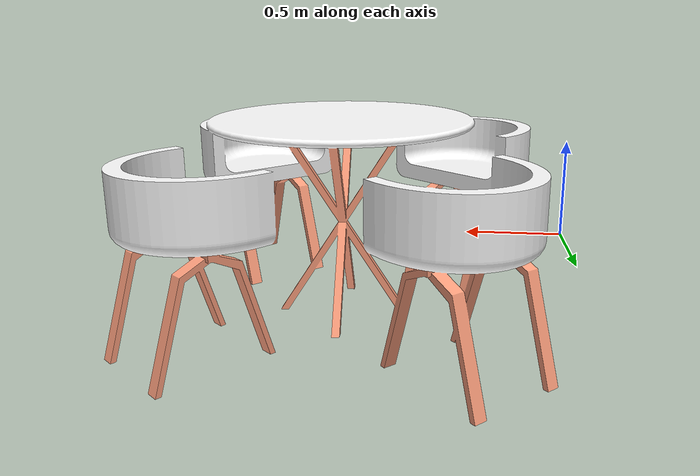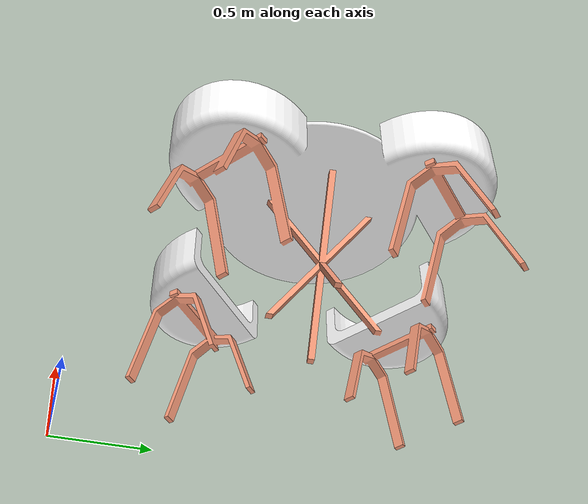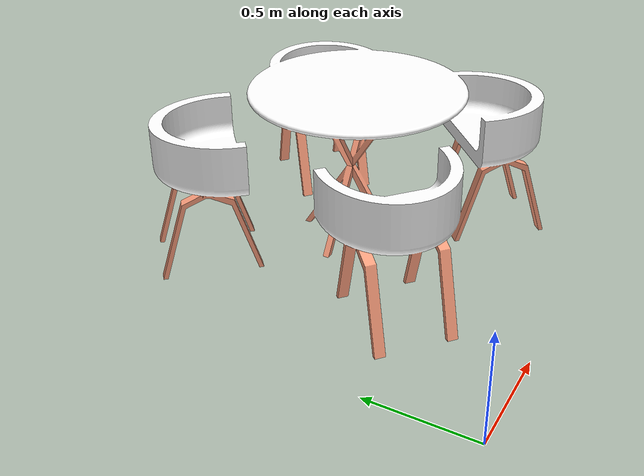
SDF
<?xml version="1.0" ?>
<sdf version="1.5">
  <model name="my_chair">
    <static>true</static><!--Object will be completely fixed to the ground wheter static is true-->
    <link name="chair_link">
        <collision name="chair_collision">
          <geometry>
            <mesh>
                <uri>model://chair/meshes/model.dae</uri>
            </mesh>
          </geometry>
        </collision>

      <visual name="chair_mesh">
        <cast_shadows>true</cast_shadows>
        <geometry>
            <mesh>
                <uri>model://chair/meshes/model.dae</uri>
            </mesh>
        </geometry>
      </visual>
    </link>
  </model>
</sdf>
